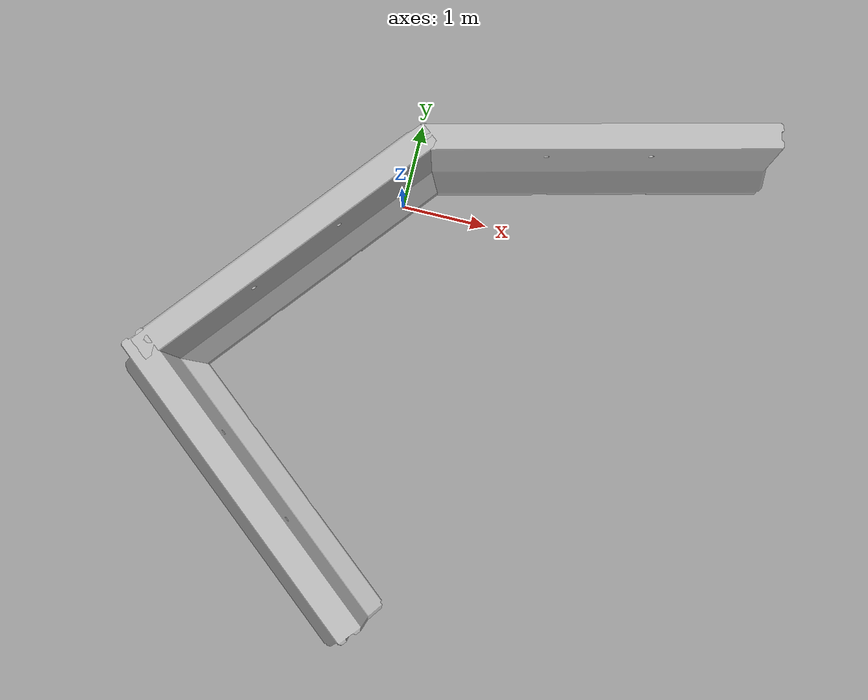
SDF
<sdf version="1.6">
 <world name="default">
  <model name="jersey_barrier">
   <static>1</static>
   <link name="link">
    <visual name="visual">
     <geometry>
      <mesh><uri>model://jersey_barrier/meshes/jersey_barrier.dae</uri><scale>1 1 1</scale></mesh>
     </geometry>
    </visual>
    <collision name="upright">
     <pose>0 0 0.5715 0 -0 0</pose>
     <geometry><box><size>4.06542 0.3063 1.143</size></box></geometry>
    </collision>
    <collision name="base">
     <pose>0 0 0.032258 0 -0 0</pose>
     <geometry><box><size>4.06542 0.8107 0.064516</size></box></geometry>
    </collision>
    <collision name="base2">
     <pose>0 0 0.1 0 -0 0</pose>
     <geometry><box><size>4.06542 0.65 0.1</size></box></geometry>
    </collision>
    <collision name="base3">
     <pose>0 0 0.2 0 -0 0</pose>
     <geometry><box><size>4.06542 0.5 0.1</size></box></geometry>
    </collision>
    <collision name="left-angle">
     <pose>0 -0.224 0.2401 0.9 -0 0</pose>
     <geometry><box><size>4.06542 0.5 0.064516</size></box></geometry>
    </collision>
    <collision name="right-angle">
     <pose>0 0.224 0.2401 -0.9 0 0</pose>
     <geometry><box><size>4.06542 0.5 0.064516</size></box></geometry>
    </collision>
    <velocity_decay><linear>0</linear><angular>0</angular></velocity_decay>
   </link>
   <pose>-1.10372 -0.883454 0 0 0 -2.26454</pose>
  </model>
  <model name="ground_plane_0">
   <static>1</static>
   <link name="link">
    <collision name="collision">
     <geometry><plane><normal>0 0 1</normal><size>100 100</size></plane></geometry>
     <surface><friction><ode><mu>100</mu><mu2>50</mu2></ode></friction></surface>
    </collision>
    <visual name="visual">
     <cast_shadows>0</cast_shadows>
     <geometry><plane><normal>0 0 1</normal><size>100 100</size></plane></geometry>
     <material>
      <script><uri>file://media/materials/scripts/gazebo.material</uri><name>Gazebo/Grey</name></script>
     </material>
    </visual>
    <velocity_decay><linear>0</linear><angular>0</angular></velocity_decay>
   </link>
   <pose>0.497681 0 0 0 -0 0</pose>
  </model>
  <model name="jersey_barrier_clone">
   <static>1</static>
   <link name="link">
    <visual name="visual">
     <geometry>
      <mesh><uri>model://jersey_barrier/meshes/jersey_barrier.dae</uri><scale>1 1 1</scale></mesh>
     </geometry>
    </visual>
    <collision name="upright">
     <pose>0 0 0.5715 0 -0 0</pose>
     <geometry><box><size>4.06542 0.3063 1.143</size></box></geometry>
    </collision>
    <collision name="base">
     <pose>0 0 0.032258 0 -0 0</pose>
     <geometry><box><size>4.06542 0.8107 0.064516</size></box></geometry>
    </collision>
    <collision name="base2">
     <pose>0 0 0.1 0 -0 0</pose>
     <geometry><box><size>4.06542 0.65 0.1</size></box></geometry>
    </collision>
    <collision name="base3">
     <pose>0 0 0.2 0 -0 0</pose>
     <geometry><box><size>4.06542 0.5 0.1</size></box></geometry>
    </collision>
    <collision name="left-angle">
     <pose>0 -0.224 0.2401 0.9 -0 0</pose>
     <geometry><box><size>4.06542 0.5 0.064516</size></box></geometry>
    </collision>
    <collision name="right-angle">
     <pose>0 0.224 0.2401 -0.9 0 0</pose>
     <geometry><box><size>4.06542 0.5 0.064516</size></box></geometry>
    </collision>
    <velocity_decay><linear>0</linear><angular>0</angular></velocity_decay>
   </link>
   <pose>-0.947334 -3.59194 0 0 0 -0.7</pose>
  </model>
  <model name="jersey_barrier_clone_0">
   <static>1</static>
   <link name="link">
    <visual name="visual">
     <geometry>
      <mesh><uri>model://jersey_barrier/meshes/jersey_barrier.dae</uri><scale>1 1 1</scale></mesh>
     </geometry>
    </visual>
    <collision name="upright">
     <pose>0 0 0.5715 0 -0 0</pose>
     <geometry><box><size>4.06542 0.3063 1.143</size></box></geometry>
    </collision>
    <collision name="base">
     <pose>0 0 0.032258 0 -0 0</pose>
     <geometry><box><size>4.06542 0.8107 0.064516</size></box></geometry>
    </collision>
    <collision name="base2">
     <pose>0 0 0.1 0 -0 0</pose>
     <geometry><box><size>4.06542 0.65 0.1</size></box></geometry>
    </collision>
    <collision name="base3">
     <pose>0 0 0.2 0 -0 0</pose>
     <geometry><box><size>4.06542 0.5 0.1</size></box></geometry>
    </collision>
    <collision name="left-angle">
     <pose>0 -0.224 0.2401 0.9 -0 0</pose>
     <geometry><box><size>4.06542 0.5 0.064516</size></box></geometry>
    </collision>
    <collision name="right-angle">
     <pose>0 0.224 0.2401 -0.9 0 0</pose>
     <geometry><box><size>4.06542 0.5 0.064516</size></box></geometry>
    </collision>
    <velocity_decay><linear>0</linear><angular>0</angular></velocity_decay>
   </link>
   <pose>2.02887 1.05426 0 0 0 -2.90827</pose>
  </model>
 </world>
</sdf>
